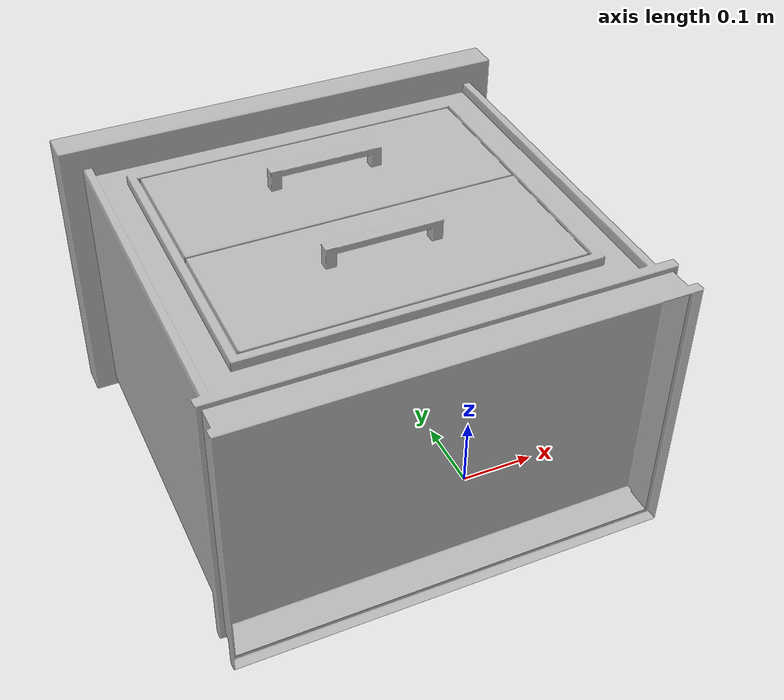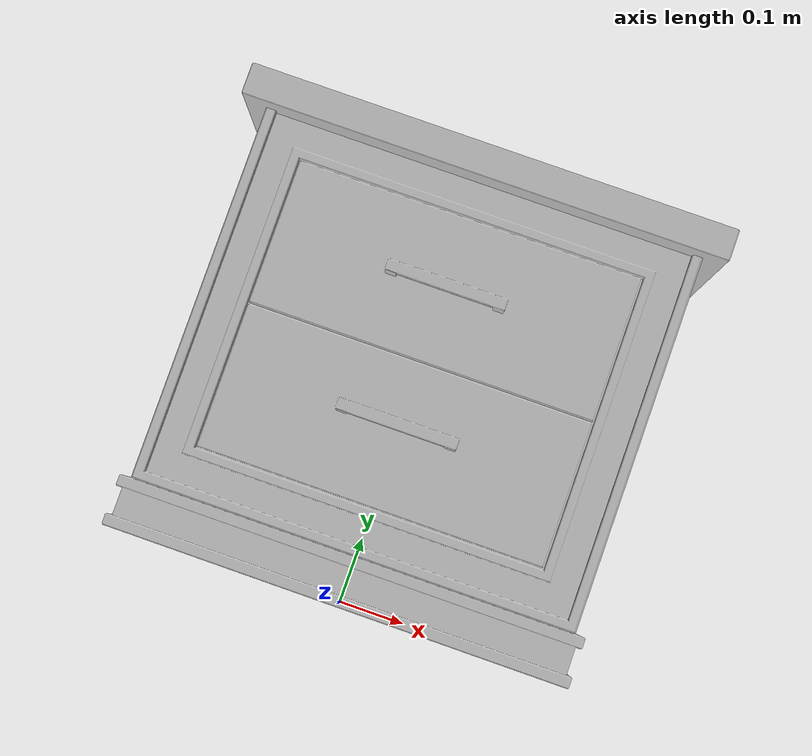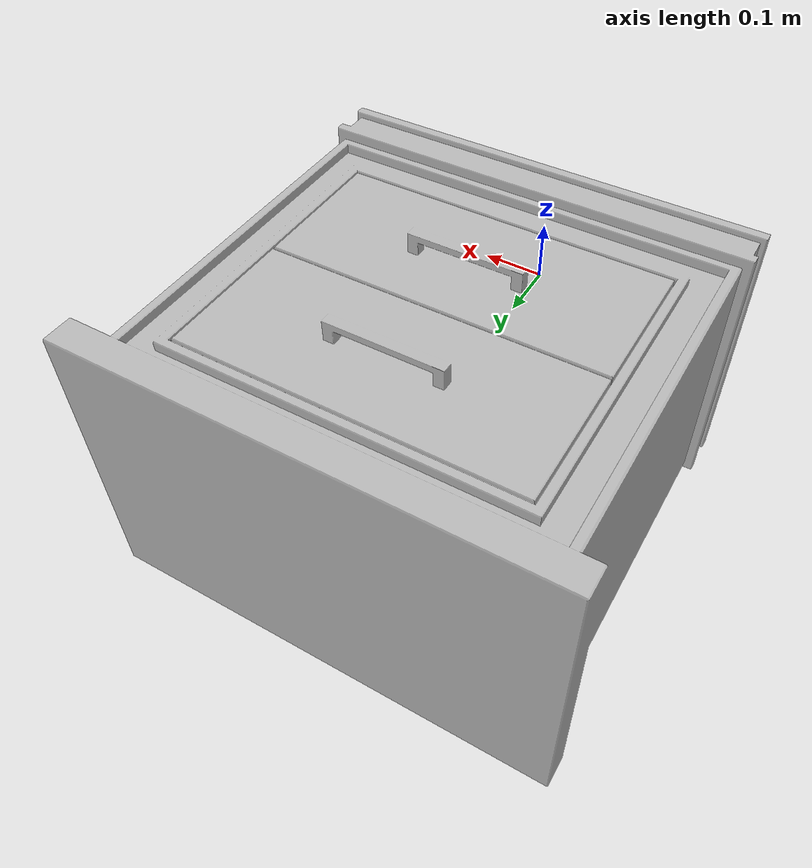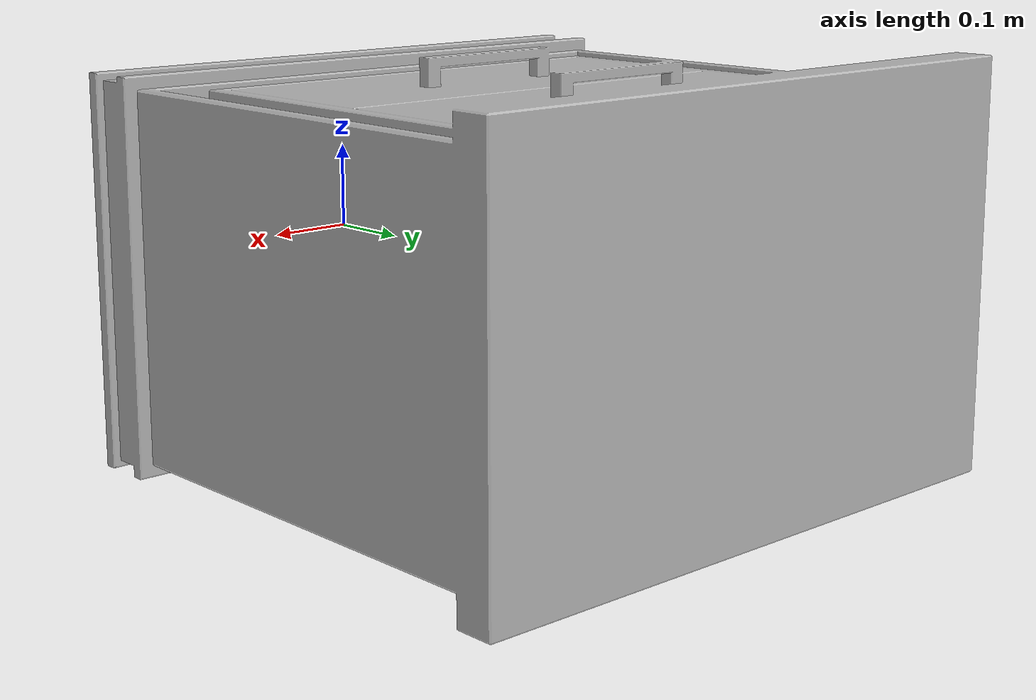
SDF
<?xml version="1.0" ?>
<sdf version="1.6">
  <model name="aws_robomaker_residential_NightStand_01">
    <link name="link">
      <inertial>
        <mass>13.6</mass>

        <inertia>
          <ixx>0.6165</ixx>
          <ixy>0</ixy>
          <ixz>0</ixz>
          <iyy>1.29664</iyy>
          <iyz>0</iyz>
          <izz>0.7706</izz>
        </inertia>

      </inertial>
      <collision name="collision">
        <geometry>
          <mesh>
<uri>model://aws_robomaker_residential_NightStand_01/meshes/object.obj</uri>
            <scale>1 1 1</scale>
          </mesh>
        </geometry>
      </collision>
      <visual name="visual">
	    <geometry>
          <mesh>
<uri>model://aws_robomaker_residential_NightStand_01/meshes/object.obj</uri>
          </mesh>
        </geometry>
      <meta> <layer> 1 </layer></meta>
</visual>
    </link>
    <static>1</static>
  </model>
</sdf>
